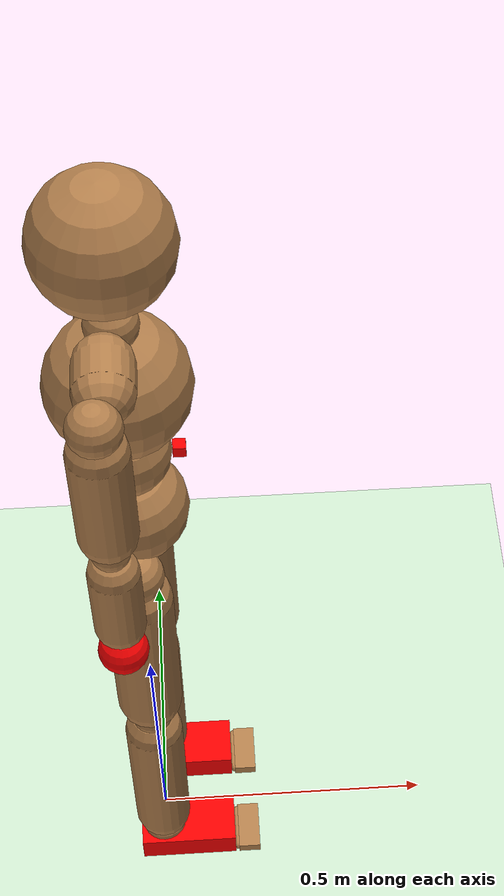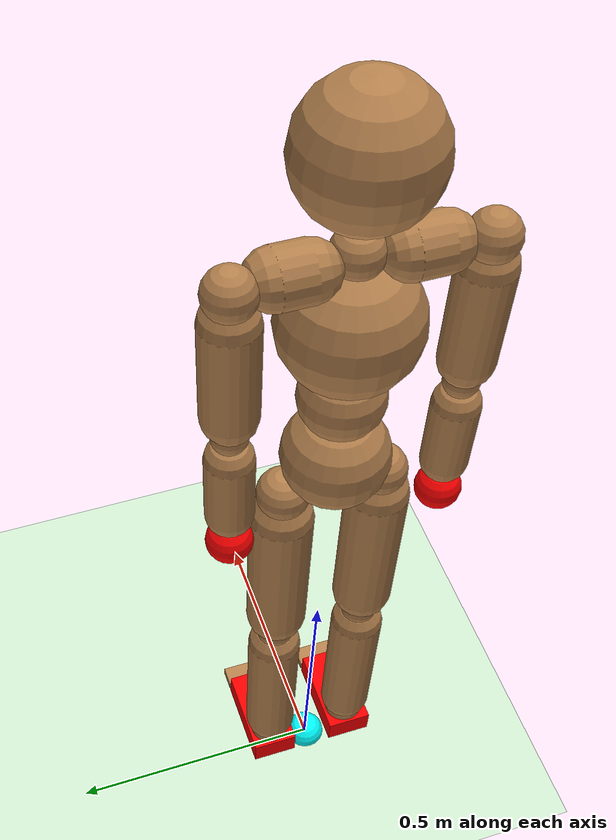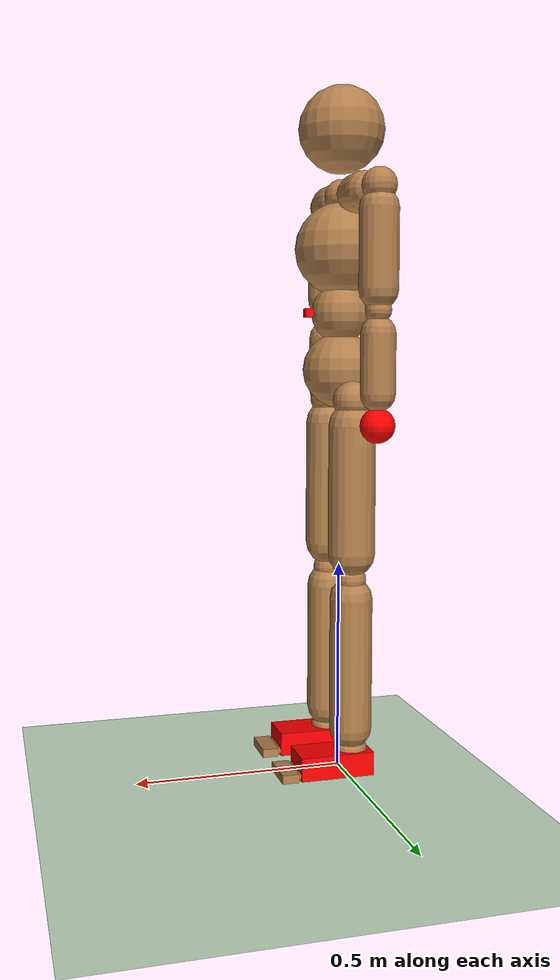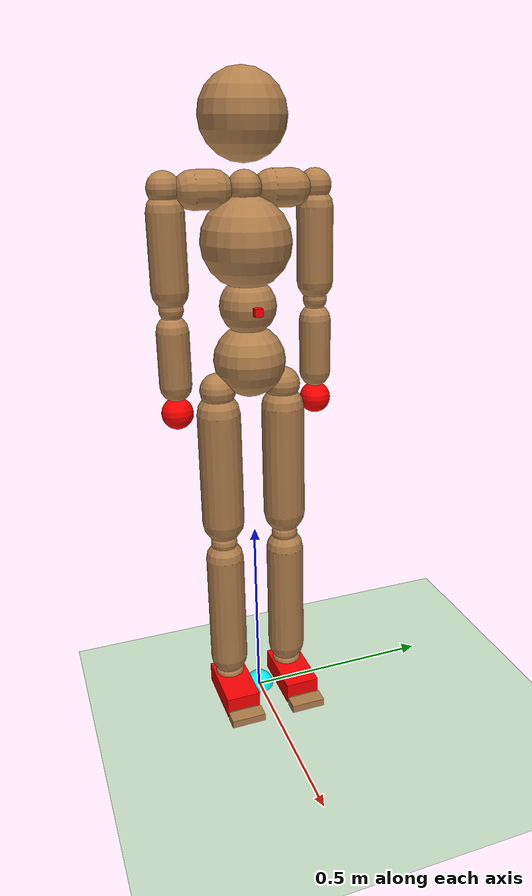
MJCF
<mujoco model="humanoid">
    <compiler angle="radian" inertiafromgeom="true"/>
    <default>
        <joint limited="true" armature="0.1" damping="0.3"/>
        <geom conaffinity="1" condim="1" contype="1" margin="0.001" rgba="0.7 0.5 .3 1"/>
        <site rgba="0.7 0.5 0.3 1"/>
        <motor ctrllimited="true" ctrlrange="-1 1"/>
    </default>
    <option integrator="RK4" iterations="50" solver="PGS" timestep="0.003"/>
    <asset>
        <texture builtin="gradient" height="100" rgb1=".4 .5 .6" rgb2="0 0 0" type="skybox" width="100"/>
        <texture builtin="flat" height="1278" mark="cross" markrgb="1 1 1" name="texgeom" random="0.01" rgb1="0.8 0.6 0.4" rgb2="0.8 0.6 0.4" type="cube" width="127"/>
        <texture name="grid" type="2d" builtin="checker" rgb1=".1 .2 .3" rgb2=".2 .3 .4" width="300" height="300" mark="edge" markrgb=".2 .3 .4"/>
        <material name="MatPlane" reflectance="0.2" texrepeat="1 1" texuniform="true" texture="grid"/>
        <material name="geom" texture="texgeom" texuniform="true"/>
    </asset>
    <worldbody>
        <geom condim="3" friction="1 .1 .1" material="MatPlane" name="floor" pos="0 0 0" rgba="0.8 0.9 0.8 1" size="50 50 0.2" type="plane"/>
        <light cutoff="100" diffuse="1 1 1" dir="-0 0 -1.3" directional="true" exponent="1" pos="0 0 1.3" specular=".1 .1 .1"/>
        <site name="expert_right_ankle" pos="0 0 0" size="0.02" rgba="0 1 0 1" type="sphere"/>
        <site name="expert_left_ankle" pos="0 0 0" size="0.02" rgba="0 1 0 1" type="sphere"/>
        <site name="expert_right_wrist" pos="0 0 0" size="0.02" rgba="0 1 0 1" type="sphere"/>
        <site name="expert_left_wrist" pos="0 0 0" size="0.02" rgba="0 1 0 1" type="sphere"/>
        <site name="humanoid_com" pos="0 0 0" size="0.04" rgba="0 1 1 1" type="sphere"/>
        <site name="expert_com" pos="0 0 0" size="0.04" rgba="1 1 0 1" type="sphere"/>
        <body name="root" pos="0 0 0.9">
            <geom name="root" mass="6.0" pos="0 0 0.07" size=".09" type="sphere"/>
            <camera name="back" pos="-3 0 1" xyaxes="0 -1 0 1 0 2" mode="trackcom"/>
            <camera name="side" pos="0 -3 1" xyaxes="1 0 0 0 1 2" mode="trackcom"/>
            <joint armature="0" damping="0" limited="false" name="root" pos="0 0 0" stiffness="0" type="free"/>
            <site name="joint_waist" pos="0 0 0.205" size="0.07" type="sphere"/>
            <site name="joint_front_x" rgba='1 0 0 1' pos="0.08 0 0.205" size="0.01 0.01 0.01" type="box"/>
            <body name="chest" pos="0 0 0.236151">
                <geom name="chest" mass="14.0" pos="0 0 0.12" size=".11" type="sphere"/>
                <joint name="chest_x" axis="1 0 0" pos="0 0 0" range="-1.2 1.2" type="hinge"/>
                <joint name="chest_y" axis="0 1 0" pos="0 0 0" range="-1.2 1.2" type="hinge"/>
                <joint name="chest_z" axis="0 0 1" pos="0 0 0" range="-1.2 1.2" type="hinge"/>
                <body name="neck" pos="0 0 0.223894">
                    <geom name="neck" mass="2.0" pos="0 0 0.175" size=".1025" type="sphere"/>
                    <joint name="neck_x" axis="1 0 0" pos="0 0 0" range="-1.0 1.0" type="hinge"/>
                    <joint name="neck_y" axis="0 1 0" pos="0 0 0" range="-1.0 1.0" type="hinge"/>
                    <joint name="neck_z" axis="0 0 1" pos="0 0 0" range="-1.0 1.0" type="hinge"/>
                    <site name="joint_neck" pos="0 0 0.02" size="0.04" type="sphere"/>
                </body>
                <site name="right_clavicle" euler="-1.57 0 0" pos="-0.011 -0.095 0.24" size="0.045 0.025" type="capsule"/>
                <body name="right_shoulder" pos="-0.02405 -0.18311 0.2435">
                    <geom fromto="0 0 -0.05 0 0 -0.23" name="right_shoulder" mass="1.5" size="0.045" type="capsule"/>
                    <site name="joint_right_shoulder" pos="0 0 0" size="0.04" type="sphere"/>
                    <joint name="right_shoulder_x" axis="1 0 0" pos="0 0 0" range="-3.14 0.5" type="hinge"/>
                    <joint name="right_shoulder_y" axis="0 1 0" pos="0 0 0" range="-3.14 0.7" type="hinge"/>
                    <joint name="right_shoulder_z" axis="0 0 1" pos="0 0 0" range="-1.5 1.5" type="hinge"/>
                    <body name="right_elbow" pos="0 0 -0.274788">
                        <geom fromto="0 0 -0.0525 0 0 -0.1875" name="right_elbow" mass="1.0" size="0.04" type="capsule"/>
                        <joint axis="0 -1 0" name="right_elbow" pos="0 0 0" range="0 2.8" type="hinge"/>
                        <site name="joint_right_elbow" pos="0 0 0" size="0.03" type="sphere"/>
                        <body name="right_wrist" pos="0 0 -0.258947">
                            <site name="right_wrist" pos="0 0 0" size="0.02"/>
                            <geom name="right_wrist" mass="0.5" size="0.04" rgba="1 0 0 1" type="sphere"/>
                        </body>
                    </body>
                </body>
                <site name="left_clavicle" euler="-1.57 0 0" pos="-0.011 0.095 0.24" size="0.045 0.025" type="capsule"/>
                <body name="left_shoulder" pos="-0.02405 0.18311 0.2435">
                    <geom fromto="0 0 -0.05 0 0 -0.23" name="left_shoulder" mass="1.5" size="0.045" type="capsule"/>
                    <joint name="left_shoulder_x" axis="1 0 0" pos="0 0 0" range="-0.5 3.14" type="hinge"/>
                    <joint name="left_shoulder_y" axis="0 1 0" pos="0 0 0" range="-3.14 0.7" type="hinge"/>
                    <joint name="left_shoulder_z" axis="0 0 1" pos="0 0 0" range="-1.5 1.5" type="hinge"/>
                    <site name="joint_left_shoulder" pos="0 0 0" size="0.04" type="sphere"/>
                    <body name="left_elbow" pos="0 0 -0.274788">
                        <geom fromto="0 0 -0.0525 0 0 -0.1875" name="left_elbow" mass="1.0" size="0.04" type="capsule"/>
                        <joint axis="0 -1 0" name="left_elbow" pos="0 0 0" range="0 2.8" type="hinge"/>
                        <site name="joint_left_elbow" pos="0 0 0" size="0.03" type="sphere"/>
                        <body name="left_wrist" pos="0 0 -0.258947">
                            <site name="left_wrist" pos="0 0 0" size="0.02"/>
                            <geom name="left_wrist" mass="0.5" size="0.04" rgba="1 0 0 1" type="sphere"/>
                        </body>
                    </body>
                </body>
            </body>
            <body name="right_hip" pos="0 -0.084887 0">
                <geom fromto="0 0 -0.06 0 0 -0.36" name="right_hip" mass="4.5" size="0.055" type="capsule"/>
                <site name="joint_right_hip" pos="0 0 0" size="0.045" type="sphere"/>
                <joint name="right_hip_x" axis="1 0 0" pos="0 0 0" range="-1.2 1.2" type="hinge"/>
                <joint name="right_hip_y" axis="0 1 0" pos="0 0 0" range="-2.57 1.57" type="hinge"/>
                <joint name="right_hip_z" axis="0 0 1" pos="0 0 0" range="-1.0 1.0" type="hinge"/>
                <body name="right_knee" pos="0 0 -0.421546">
                    <geom fromto="0 0 -0.045 0 0 -0.355" name="right_knee" mass="3.0" size="0.05" type="capsule"/>
                    <site name="joint_right_knee" pos="0 0 0" size="0.035" type="sphere"/>
                    <joint axis="0 -1 0" name="right_knee" pos="0 0 0" range="-2.7 0.0" type="hinge"/>
                    <body name="right_ankle" pos="0 0 -0.40987">
                        <joint name="right_ankle_x" axis="1 0 0" pos="0 0 0" range="-1.0 1.0" type="hinge"/>
                        <joint name="right_ankle_y" axis="0 1 0" pos="0 0 0" range="-1.0 1.57" type="hinge"/>
                        <joint name="right_ankle_z" axis="0 0 1" pos="0 0 0" range="-1.0 1.0" type="hinge"/>
                        <site name="joint_right_ankle" pos="0 0 0" size="0.04" type="sphere"/>
                        <site name="right_ankle" pos="0.0885 0 -0.0275" size="0.02"/>
                        <geom name="right_ankle" mass="1.0" pos="0.045 0 -0.0225" size="0.0885 0.045 0.0275" rgba="1 0 0 1" type="box"/>
                        <body name="right_toe" pos="0.09 0 -0.03">
                            <geom fromto="0.05 -0.035 -0.01 0.05 0.035 -0.01" name="right_toe_joint" mass="0.1" size="0.01" type="capsule"/>
                            <joint name="right_toe" axis="0 1 0" pos="0.05 0 -0.01" range="-0.7 0.5" type="hinge" armature="0.05" damping="0.3"/>
                            <geom name="right_toe" mass="0.3" pos="0.07 0 -0.01" size="0.02 0.045 0.01" type="box"/>
                            <site name="right_toe" pos="0.08 0 -0.01" size="0.01" type="sphere"/>
                        </body>
                    </body>
                </body>
            </body>
            <body name="left_hip" pos="0 0.084887 0">
                <geom fromto="0 0 -0.06 0 0 -0.36" name="left_hip" mass="4.5" size="0.055" type="capsule"/>
                <site name="joint_left_hip" pos="0 0 0" size="0.045" type="sphere"/>
                <joint name="left_hip_x" axis="1 0 0" pos="0 0 0" range="-1.2 1.2" type="hinge"/>
                <joint name="left_hip_y" axis="0 1 0" pos="0 0 0" range="-2.57 1.57" type="hinge"/>
                <joint name="left_hip_z" axis="0 0 1" pos="0 0 0" range="-1.0 1.0" type="hinge"/>
                <body name="left_knee" pos="0 0 -0.421546">
                    <geom fromto="0 0 -0.045 0 0 -0.355" name="left_knee" mass="3.0" size="0.05" type="capsule"/>
                    <site name="joint_left_knee" pos="0 0 0" size="0.035" type="sphere"/>
                    <joint axis="0 -1 0" name="left_knee" pos="0 0 0" range="-2.7 0.0" type="hinge"/>
                    <body name="left_ankle" pos="0 0 -0.40987">
                        <joint name="left_ankle_x" axis="1 0 0" pos="0 0 0" range="-1.0 1.0" type="hinge"/>
                        <joint name="left_ankle_y" axis="0 1 0" pos="0 0 0" range="-1.0 1.57" type="hinge"/>
                        <joint name="left_ankle_z" axis="0 0 1" pos="0 0 0" range="-1.0 1.0" type="hinge"/>
                        <site name="joint_left_ankle" pos="0 0 0" size="0.04" type="sphere"/>
                        <site name="left_ankle" pos="0.0885 0 -0.0275" size="0.02"/>
                        <geom name="left_ankle" mass="1.0" pos="0.045 0 -0.0225" size="0.0885 0.045 0.0275" rgba="1 0 0 1" type="box"/>
                        <body name="left_toe" pos="0.09 0 -0.03">
                            <geom fromto="0.05 -0.035 -0.01 0.05 0.035 -0.01" name="left_toe_joint" mass="0.1" size="0.01" type="capsule"/>
                            <joint name="left_toe" axis="0 1 0" pos="0.05 0 -0.01" range="-0.7 0.5" type="hinge" armature="0.05" damping="0.3"/>
                            <geom name="left_toe" mass="0.3" pos="0.07 0 -0.01" size="0.02 0.045 0.01" type="box"/>
                            <site name="left_toe" pos="0.08 0 -0.01" size="0.01" type="sphere"/>
                        </body>
                    </body>
                </body>
            </body>
        </body>
    </worldbody>
    <contact>
        <exclude body1="right_hip" body2="root"/>
        <exclude body1="left_hip" body2="root"/>
        <exclude body1="right_hip" body2="right_knee"/>
        <exclude body1="left_hip" body2="left_knee"/>
        <exclude body1="right_knee" body2="right_ankle"/>
        <exclude body1="left_knee" body2="left_ankle"/>
        <exclude body1="right_elbow" body2="right_shoulder"/>
        <exclude body1="left_elbow" body2="left_shoulder"/>
        <exclude body1="right_ankle" body2="right_toe"/>
        <exclude body1="left_ankle" body2="left_toe"/>
    </contact>
    <actuator>
        <motor gear="200" joint="chest_x" name="chest_x"/>
        <motor gear="200" joint="chest_y" name="chest_y"/>
        <motor gear="200" joint="chest_z" name="chest_z"/>
        <motor gear="50" joint="neck_x" name="neck_x"/>
        <motor gear="50" joint="neck_y" name="neck_y"/>
        <motor gear="50" joint="neck_z" name="neck_z"/>
        <motor gear="100" joint="right_shoulder_x" name="right_shoulder_x"/>
        <motor gear="100" joint="right_shoulder_y" name="right_shoulder_y"/>
        <motor gear="100" joint="right_shoulder_z" name="right_shoulder_z"/>
        <motor gear="60" joint="right_elbow" name="right_elbow"/>
        <motor gear="100" joint="left_shoulder_x" name="left_shoulder_x"/>
        <motor gear="100" joint="left_shoulder_y" name="left_shoulder_y"/>
        <motor gear="100" joint="left_shoulder_z" name="left_shoulder_z"/>
        <motor gear="60" joint="left_elbow" name="left_elbow"/>
        <motor gear="200" joint="right_hip_x" name="right_hip_x"/>
        <motor gear="400" joint="right_hip_y" name="right_hip_y"/>
        <motor gear="200" joint="right_hip_z" name="right_hip_z"/>
        <motor gear="400" joint="right_knee" name="right_knee"/>
        <motor gear="90" joint="right_ankle_x" name="right_ankle_x"/>
        <motor gear="200" joint="right_ankle_y" name="right_ankle_y"/>
        <motor gear="90" joint="right_ankle_z" name="right_ankle_z"/>
        <motor gear="75" joint="right_toe" name="right_toe"/>
        <motor gear="200" joint="left_hip_x" name="left_hip_x"/>
        <motor gear="400" joint="left_hip_y" name="left_hip_y"/>
        <motor gear="200" joint="left_hip_z" name="left_hip_z"/>
        <motor gear="400" joint="left_knee" name="left_knee"/>
        <motor gear="90" joint="left_ankle_x" name="left_ankle_x"/>
        <motor gear="200" joint="left_ankle_y" name="left_ankle_y"/>
        <motor gear="90" joint="left_ankle_z" name="left_ankle_z"/>
        <motor gear="75" joint="left_toe" name="left_toe"/>
    </actuator>
</mujoco>
